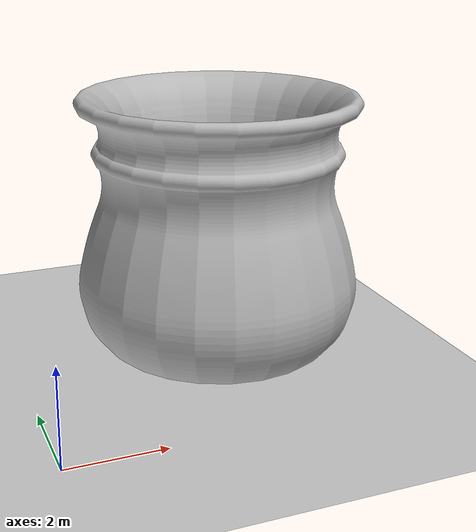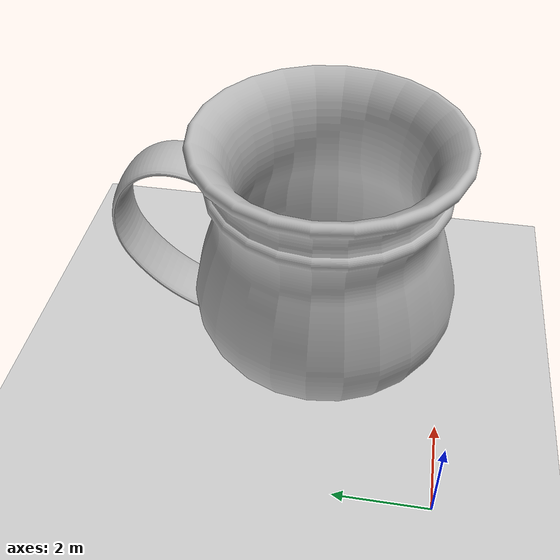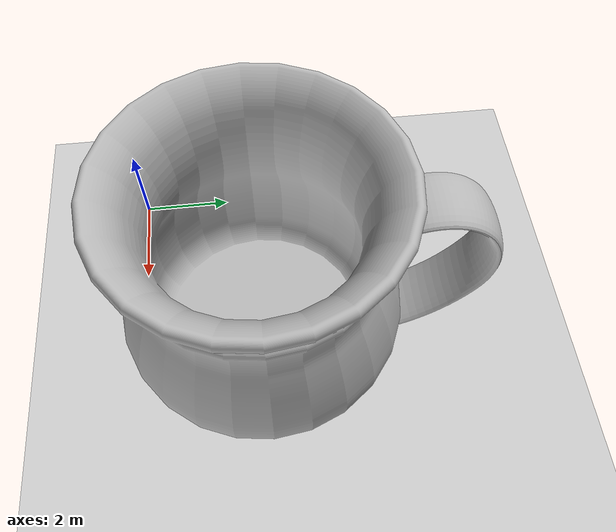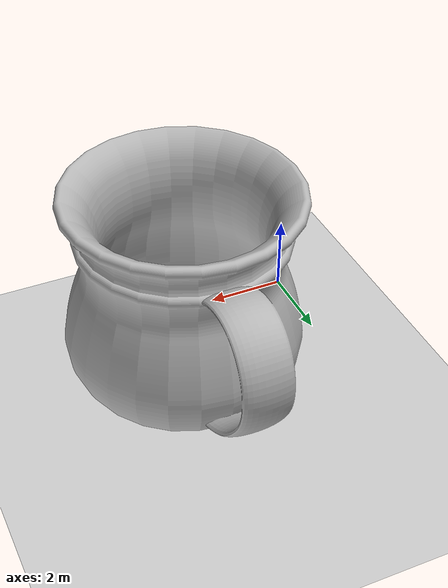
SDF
<sdf version="1.4">
 <world name="default">
  <include><uri>model://ground_plane</uri></include>
  <include><uri>model://sun</uri></include>
  <include><uri>model://mug_gazebo</uri><pose>4 2.7 0.775 0 0 -1.5707963</pose></include>
  <include><uri>model://crackers_gazebo</uri><pose>3.8 3.15 0.775 1.5707963 0 -2.094129</pose></include>
  <include><uri>model://crackers1_gazebo</uri><pose>4.1 3.45 0.775 0 0 -1.7</pose></include>
  <light name="user_spot_light_0" type="spot">
   <pose>3.3 2.9 1.5 0 -0.599999 0</pose>
   <diffuse>0.5 0.5 0.5 1</diffuse>
   <specular>0.1 0.1 0.1 1</specular>
   <direction>0 0 -1</direction>
   <attenuation>
    <range>20</range>
    <constant>0.5</constant>
    <linear>0.01</linear>
    <quadratic>0.001</quadratic>
   </attenuation>
   <cast_shadows>0</cast_shadows>
   <spot><inner_angle>0.6</inner_angle><outer_angle>1</outer_angle><falloff>1</falloff></spot>
  </light>
  <model name="table1">
   <static>true</static>
   <link name="chassis">
    <pose>4.05 3 0.3875 0 0 0</pose>
    <collision name="collision"><geometry><box><size>0.913 0.913 0.775</size></box></geometry></collision>
    <visual name="visual"><geometry><box><size>0.913 0.913 0.775</size></box></geometry></visual>
   </link>
  </model>
 </world>
</sdf>

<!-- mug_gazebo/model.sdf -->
<sdf version='1.4'>
  <model name="mug">
      <static>0</static>
      <link name='link'>
        <inertial>
          <mass>0.0189132</mass>
          <inertia>
            <ixx>3.36060179959e-06</ixx>
            <ixy>0.000000</ixy>
            <ixz>0.000000</ixz>
            <iyy>3.36060179959e-06</iyy>
            <iyz>0.000000</iyz>
            <izz>1.34975977923e-06</izz>
          </inertia>
        </inertial>
        <collision name='collision'>
          <geometry>
            <mesh>
              <uri>model://mug_gazebo/meshes/mug.stl</uri>
              <scale>0.0254 0.0254 0.0254</scale>
            </mesh>
          </geometry>
          <surface>
            <friction>
              <ode>
                <mu>30.0</mu>
                <mu2>30.0</mu2>
              </ode>
            </friction>
          </surface>
        </collision>
        <visual name='visual'>
          <geometry>
            <mesh>
              <uri>model://mug_gazebo/meshes/mug.dae</uri>
              <scale>1 1 1</scale>
            </mesh>
          </geometry>
        </visual>
        <velocity_decay>
          <linear>0.000000</linear>
          <angular>0.000000</angular>
        </velocity_decay>
        <self_collide>0</self_collide>
        <kinematic>0</kinematic>
        <gravity>1</gravity>
      </link>
  </model>
</sdf>

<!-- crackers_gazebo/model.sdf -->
<sdf version='1.4'>
  <model name="crackers">
      <static>0</static>
      <link name='link'>
        <inertial>
          <mass>0.0189132</mass>
          <inertia>
            <ixx>3.36060179959e-06</ixx>
            <ixy>0.000000</ixy>
            <ixz>0.000000</ixz>
            <iyy>3.36060179959e-06</iyy>
            <iyz>0.000000</iyz>
            <izz>1.34975977923e-06</izz>
          </inertia>
        </inertial>
        <collision name='collision'>
          <geometry>
            <mesh>
              <uri>model://crackers_gazebo/meshes/crackers.dae</uri>
              <scale>0.0254 0.0254 0.0254</scale>
            </mesh>
          </geometry>
          <surface>
            <friction>
              <ode>
                <mu>30.0</mu>
                <mu2>30.0</mu2>
              </ode>
            </friction>
          </surface>
        </collision>
        <visual name='visual'>
          <geometry>
            <mesh>
              <uri>model://crackers_gazebo/meshes/crackers.dae</uri>
              <scale>0.0254 0.0254 0.0254</scale>
            </mesh>
          </geometry>
        </visual>
        <velocity_decay>
          <linear>0.000000</linear>
          <angular>0.000000</angular>
        </velocity_decay>
        <self_collide>0</self_collide>
        <kinematic>0</kinematic>
        <gravity>1</gravity>
      </link>
  </model>
</sdf>

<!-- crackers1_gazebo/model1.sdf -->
<sdf version='1.4'>
  <model name="crackers1">
      <static>0</static>
      <link name='link'>
        <inertial>
          <mass>0.0189132</mass>
          <inertia>
            <ixx>3.36060179959e-06</ixx>
            <ixy>0.000000</ixy>
            <ixz>0.000000</ixz>
            <iyy>3.36060179959e-06</iyy>
            <iyz>0.000000</iyz>
            <izz>1.34975977923e-06</izz>
          </inertia>
        </inertial>
        <collision name='collision'>
          <geometry>
            <mesh>
              <uri>model://crackers1_gazebo/meshes/crackers1.stl</uri>
              <scale>0.0254 0.0254 0.0254</scale>
            </mesh>
          </geometry>
          <surface>
            <friction>
              <ode>
                <mu>30.0</mu>
                <mu2>30.0</mu2>
              </ode>
            </friction>
          </surface>
        </collision>
        <visual name='visual'>
          <geometry>
            <mesh>
              <uri>model://crackers1_gazebo/meshes/crackers1.dae</uri>
              <scale>1 1 1</scale>
            </mesh>
          </geometry>
        </visual>
        <velocity_decay>
          <linear>0.000000</linear>
          <angular>0.000000</angular>
        </velocity_decay>
        <self_collide>0</self_collide>
        <kinematic>0</kinematic>
        <gravity>1</gravity>
      </link>
  </model>
</sdf>
